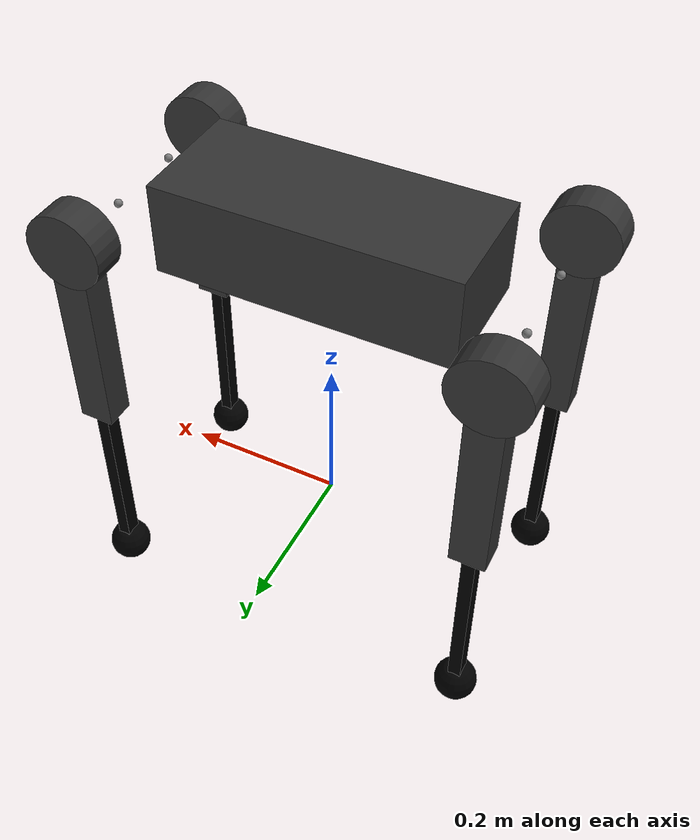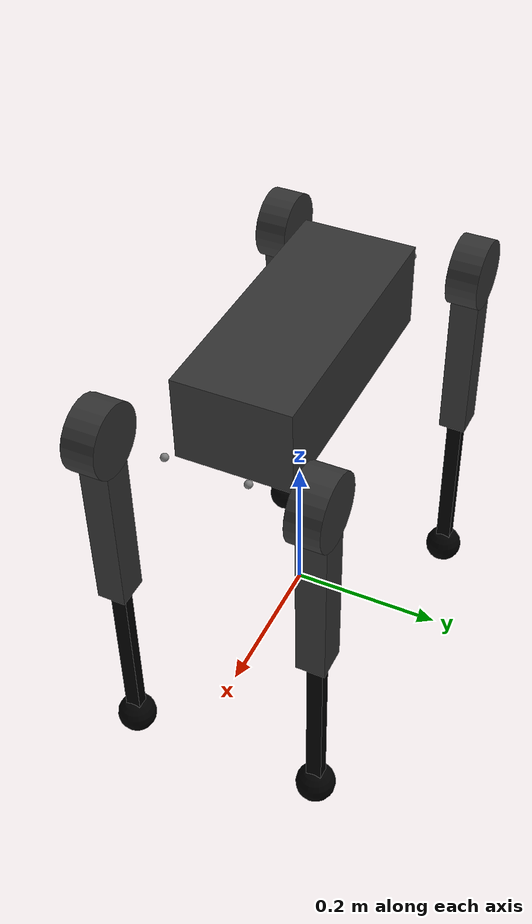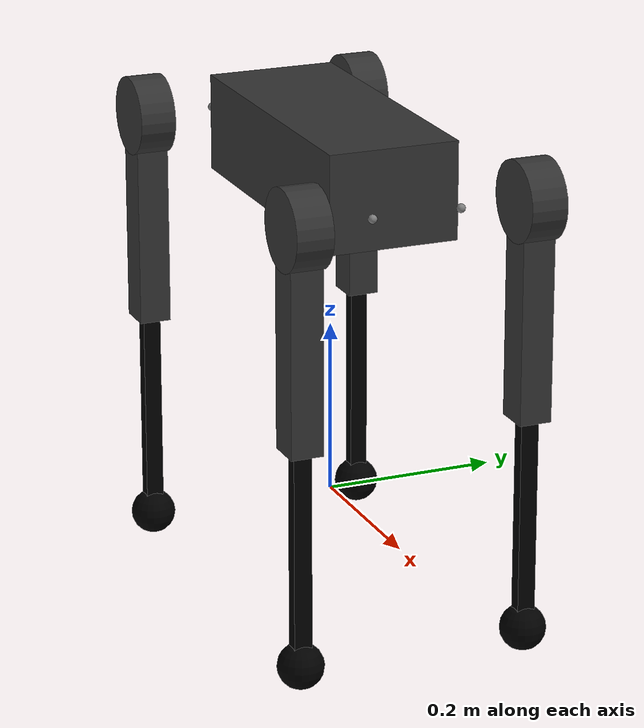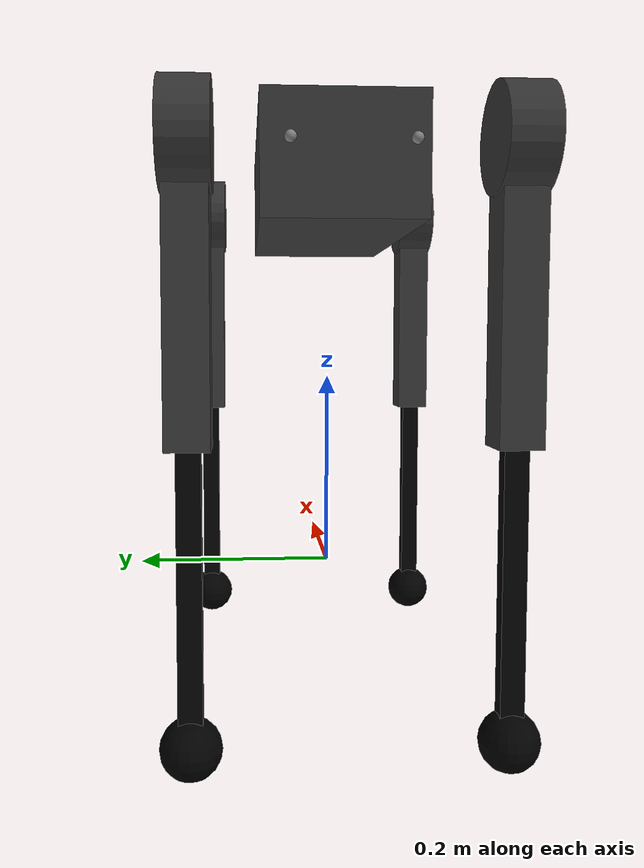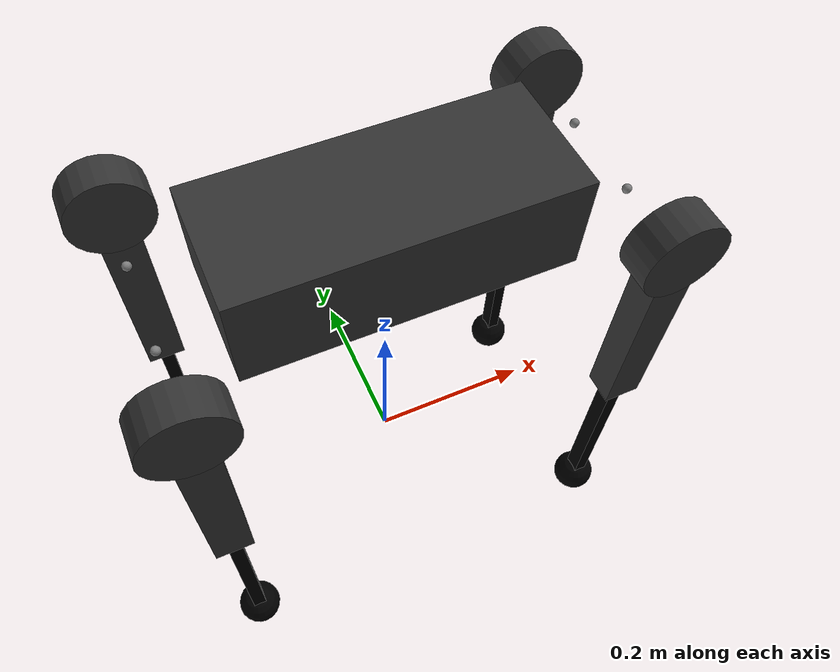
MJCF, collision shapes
<mujoco model="aliengo_description">
    <compiler angle="radian" meshdir="assets" />
    <option gravity='0 0 -9.806' iterations='50' solver='Newton' timestep='0.002'/>

    <default>
        <geom contype="1" conaffinity="1" friction="0.6 0.3 0.3" rgba="0.5 0.6 0.7 1" margin="0.001" group="0"/>
        <motor ctrlrange="-44.4 44.4" ctrllimited="true"/>
        <camera fovy="60"/>
        <joint damping="0.01" armature="0.01" frictionloss="0.2" />
    </default>

    <asset>
        <mesh name="trunk" file="trunk.stl" />
        <mesh name="hip" file="hip.stl" />
        <mesh name="thigh_mirror" file="thigh_mirror.stl" />
        <mesh name="calf" file="calf.stl" />
        <mesh name="thigh" file="thigh.stl" />
    </asset>

    <visual>
        <rgba com="0.502 1.0 0 0.5" contactforce="0.98 0.4 0.4 0.7" contactpoint="1.0 1.0 0.6 0.4"/>
        <scale com="0.2" forcewidth="0.035" contactwidth="0.10" contactheight="0.04"/>
    </visual>

    <worldbody>
        <light name="spotlight" mode="targetbodycom" target="trunk" pos="0 -1 2"/>
        <body name="trunk" pos="0 0 0.4">
            <camera name="track" mode="trackcom" pos="0 -1.3 1.6" xyaxes="1 0 0 0 0.707 0.707"/>
            <site name="head" pos="0.3 0 0" rgba="1 0 0 1" size="0.02" group="5"/>
            <site name="trunk_site"/>
            <inertial pos="0.00846406 0.00404455 -0.000762916" quat="-3.12625e-05 0.708321 0.00247254 0.705886" mass="9.042" diaginertia="0.174706 0.161175 0.033357" />
            <joint name="trunk" type="free" />
            <geom type="mesh" rgba="0.15 0.15 0.25 1" contype="0" conaffinity="0" group="1" mesh="trunk"/>
            <geom size="0.18 0.075 0.056" type="box" rgba="0.2 0.2 0.2 0" />
            <geom size="0.0005 0.0005 0.0005" type="box" contype="0" conaffinity="0" group="1" rgba="0.8 0 0 0" />
            <geom size="0.0005 0.0005 0.0005" type="box" rgba="0.8 0 0 0" />
            <site name="imu" pos="0 0 0"/>

            <body name="FR_hip" pos="0.2399 -0.051 0">
                <site name="FR_hip_site"/>
                <inertial pos="-0.022191 -0.015144 -1.5e-05" quat="0.0135493 0.706835 -0.0117635 0.707151" mass="1.993" diaginertia="0.00558695 0.00491009 0.00290132" />
                <joint name="FR_hip_joint" pos="0 0 0" axis="1 0 0" limited="true" range="-1.22173 1.22173" />
                <geom quat="0 1 0 0" type="mesh" contype="0" conaffinity="0" group="1" rgba="0.15 0.15 0.25 1" mesh="hip" />
                <geom size="0.046 0.0209" pos="0 -0.083 0" quat="0.707107 0.707107 0 0" type="cylinder" rgba="0.2 0.2 0.2 0" />
                <body name="FR_thigh" pos="0 -0.083 0">
                    <site name="FR_thigh_site"/>
                    <inertial pos="-0.005607 0.003877 -0.048199" quat="0.694544 -0.0335669 -0.031246 0.717987" mass="0.639" diaginertia="0.0058474 0.00571186 0.000324584" />
                    <joint name="FR_thigh_joint" pos="0 0 0" axis="0 1 0" />
                    <geom type="mesh" contype="0" conaffinity="0" group="1" rgba="0.15 0.15 0.25 1" mesh="thigh_mirror" />
                    <geom name="FR_thigh" size="0.125 0.0187 0.0215" pos="0 0 -0.125" quat="0.707107 0 0.707107 0" type="box" rgba="0.2 0.2 0.2 0" />
                    <body name="FR_calf" pos="0 0 -0.25">
                        <site name="FR_calf_site"/>
                        <inertial pos="0.00215606 4.88427e-05 -0.166671" quat="0.707462 0.00517582 0.00535172 0.706712" mass="0.267" diaginertia="0.00690975 0.00689712 5.4885e-05" />
                        <joint name="FR_calf_joint" pos="0 0 0" axis="0 1 0" limited="true" range="-2.77507 -0.645772" />
                        <geom type="mesh" contype="0" conaffinity="0" group="1" rgba="0 0 0 1" mesh="calf" />
                        <geom name="FR_calf" size="0.125 0.0104 0.008" pos="0 0 -0.125" quat="0.707107 0 0.707107 0" type="box" rgba="0 0 0 0" />
                        <geom size="0.0165" pos="0 0 -0.25" contype="0" conaffinity="0" group="1" rgba="0 0 0 1" />
                        <geom name="FR_foot" size="0.0265" pos="0 0 -0.25" rgba="0 0 0 1" />
                        <site name="FR_foot_site" size="0.0265" pos="0 0 -0.25"/>
                    </body>
                </body>
            </body>
            <body name="FL_hip" pos="0.2399 0.051 0">
                <site name="FL_hip_site"/>
                <inertial pos="-0.022191 0.015144 -1.5e-05" quat="-0.0135493 0.706835 0.0117635 0.707151" mass="1.993" diaginertia="0.00558695 0.00491009 0.00290132" />
                <joint name="FL_hip_joint" pos="0 0 0" axis="1 0 0" limited="true" range="-1.22173 1.22173" />
                <geom type="mesh" contype="0" conaffinity="0" group="1" rgba="0.15 0.15 0.25 1" mesh="hip" />
                <geom size="0.046 0.0209" pos="0 0.083 0" quat="0.707107 0.707107 0 0" type="cylinder" rgba="0.2 0.2 0.2 0" />
                <body name="FL_thigh" pos="0 0.083 0">
                    <site name="FL_thigh_site"/>
                    <inertial pos="-0.005607 -0.003877 -0.048199" quat="0.717987 -0.031246 -0.0335669 0.694544" mass="0.639" diaginertia="0.0058474 0.00571186 0.000324584" />
                    <joint name="FL_thigh_joint" pos="0 0 0" axis="0 1 0" />
                    <geom type="mesh" contype="0" conaffinity="0" group="1" rgba="0.15 0.15 0.25 1" mesh="thigh" />
                    <geom name="FL_thigh" size="0.125 0.0187 0.0215" pos="0 0 -0.125" quat="0.707107 0 0.707107 0" type="box" rgba="0.2 0.2 0.2 0" />
                    <body name="FL_calf" pos="0 0 -0.25">
                        <site name="FL_calf_site"/>
                        <inertial pos="0.00215606 4.88427e-05 -0.166671" quat="0.707462 0.00517582 0.00535172 0.706712" mass="0.267" diaginertia="0.00690975 0.00689712 5.4885e-05" />
                        <joint name="FL_calf_joint" pos="0 0 0" axis="0 1 0" limited="true" range="-2.77507 -0.645772" />
                        <geom type="mesh" contype="0" conaffinity="0" group="1" rgba="0 0 0 1" mesh="calf" />
                        <geom name="FL_calf" size="0.125 0.0104 0.008" pos="0 0 -0.125" quat="0.707107 0 0.707107 0" type="box" rgba="0 0 0 0" />
                        <geom size="0.0165" pos="0 0 -0.25" contype="0" conaffinity="0" group="1" rgba="0 0 0 1" />
                        <geom name="FL_foot" size="0.0265" pos="0 0 -0.25" rgba="0 0 0 1" />
                        <site name="FL_foot_site" size="0.0265" pos="0 0 -0.25"/>
                    </body>
                </body>
            </body>
            <body name="RR_hip" pos="-0.2399 -0.051 0">
                <site name="RR_hip_site"/>
                <inertial pos="0.022191 -0.015144 -1.5e-05" quat="-0.0117635 0.707151 0.0135493 0.706835" mass="1.993" diaginertia="0.00558695 0.00491009 0.00290132" />
                <joint name="RR_hip_joint" pos="0 0 0" axis="1 0 0" limited="true" range="-1.22173 1.22173" />
                <geom quat="0 0 0 -1" type="mesh" contype="0" conaffinity="0" group="1" rgba="0.15 0.15 0.25 1" mesh="hip" />
                <geom size="0.046 0.0209" pos="0 -0.083 0" quat="0.707107 0.707107 0 0" type="cylinder" rgba="0.2 0.2 0.2 0" />
                <body name="RR_thigh" pos="0 -0.083 0">
                    <site name="RR_thigh_site"/>
                    <inertial pos="-0.005607 0.003877 -0.048199" quat="0.694544 -0.0335669 -0.031246 0.717987" mass="0.639" diaginertia="0.0058474 0.00571186 0.000324584" />
                    <joint name="RR_thigh_joint" pos="0 0 0" axis="0 1 0" />
                    <geom type="mesh" contype="0" conaffinity="0" group="1" rgba="0.15 0.15 0.25 1" mesh="thigh_mirror" />
                    <geom name="RR_thigh" size="0.125 0.0187 0.0215" pos="0 0 -0.125" quat="0.707107 0 0.707107 0" type="box" rgba="0.2 0.2 0.2 0" />
                    <body name="RR_calf" pos="0 0 -0.25">
                        <site name="RR_calf_site"/>
                        <inertial pos="0.00215606 4.88427e-05 -0.166671" quat="0.707462 0.00517582 0.00535172 0.706712" mass="0.267" diaginertia="0.00690975 0.00689712 5.4885e-05" />
                        <joint name="RR_calf_joint" pos="0 0 0" axis="0 1 0" limited="true" range="-2.77507 -0.645772" />
                        <geom type="mesh" contype="0" conaffinity="0" group="1" rgba="0 0 0 1" mesh="calf" />
                        <geom name="RR_calf" size="0.125 0.0104 0.008" pos="0 0 -0.125" quat="0.707107 0 0.707107 0" type="box" rgba="0 0 0 0" />
                        <geom size="0.0165" pos="0 0 -0.25" contype="0" conaffinity="0" group="1" rgba="0 0 0 1" />
                        <geom name="RR_foot" size="0.0265" pos="0 0 -0.25" rgba="0 0 0 1" />
                        <site name="RR_foot_site" size="0.0265" pos="0 0 -0.25"/>
                    </body>
                </body>
            </body>
            <body name="RL_hip" pos="-0.2399 0.051 0">
                <site name="RL_hip_site"/>
                <inertial pos="0.022191 0.015144 -1.5e-05" quat="0.0117635 0.707151 -0.0135493 0.706835" mass="1.993" diaginertia="0.00558695 0.00491009 0.00290132" />
                <joint name="RL_hip_joint" pos="0 0 0" axis="1 0 0" limited="true" range="-1.22173 1.22173" />
                <geom quat="0 0 1 0" type="mesh" contype="0" conaffinity="0" group="1" rgba="0.15 0.15 0.25 1" mesh="hip" />
                <geom size="0.046 0.0209" pos="0 0.083 0" quat="0.707107 0.707107 0 0" type="cylinder" rgba="0.2 0.2 0.2 0" />
                <body name="RL_thigh" pos="0 0.083 0">
                    <site name="RL_thigh_site"/>
                    <inertial pos="-0.005607 -0.003877 -0.048199" quat="0.717987 -0.031246 -0.0335669 0.694544" mass="0.639" diaginertia="0.0058474 0.00571186 0.000324584" />
                    <joint name="RL_thigh_joint" pos="0 0 0" axis="0 1 0" />
                    <geom type="mesh" contype="0" conaffinity="0" group="1" rgba="0.15 0.15 0.25 1" mesh="thigh" />
                    <geom name="RL_thigh" size="0.125 0.0187 0.0215" pos="0 0 -0.125" quat="0.707107 0 0.707107 0" type="box" rgba="0.2 0.2 0.2 0" />
                    <body name="RL_calf" pos="0 0 -0.25">
                        <site name="RL_calf_site"/>
                        <inertial pos="0.00215606 4.88427e-05 -0.166671" quat="0.707462 0.00517582 0.00535172 0.706712" mass="0.267" diaginertia="0.00690975 0.00689712 5.4885e-05" />
                        <joint name="RL_calf_joint" pos="0 0 0" axis="0 1 0" limited="true" range="-2.77507 -0.645772" />
                        <geom type="mesh" contype="0" conaffinity="0" group="1" rgba="0 0 0 1" mesh="calf" />
                        <geom name="RL_calf" size="0.125 0.0104 0.008" pos="0 0 -0.125" quat="0.707107 0 0.707107 0" type="box" rgba="0 0 0 0" />
                        <geom size="0.0165" pos="0 0 -0.25" contype="0" conaffinity="0" group="1" rgba="0 0 0 1" />
                        <geom name="RL_foot" size="0.0265" pos="0 0 -0.25" rgba="0 0 0 1" />
                        <site name="RL_foot_site" size="0.0265" pos="0 0 -0.25"/>
                    </body>
                </body>
            </body>
        </body>
    </worldbody>

</mujoco>
